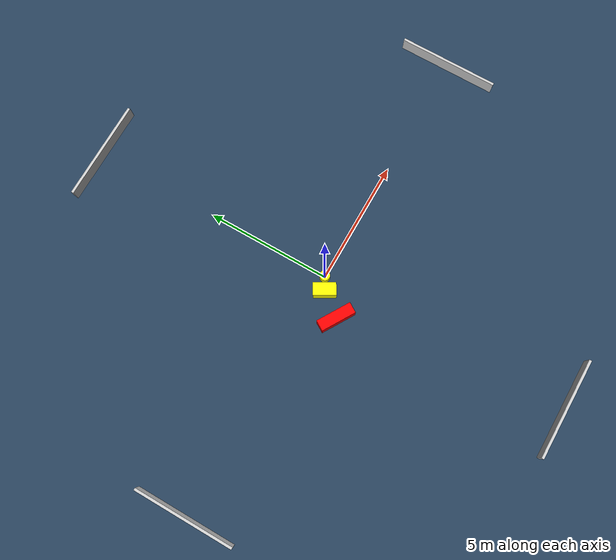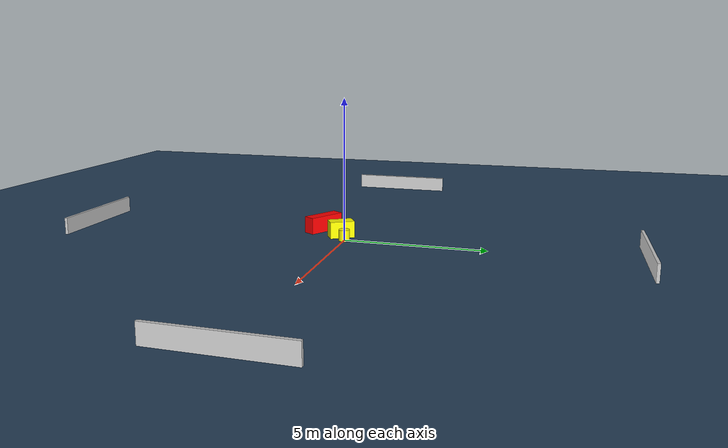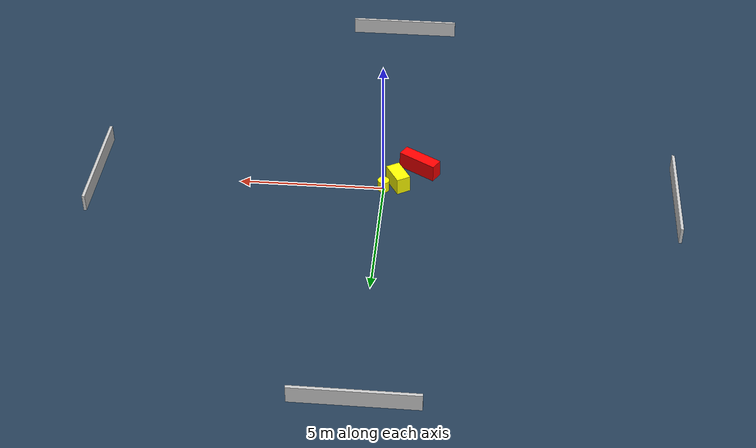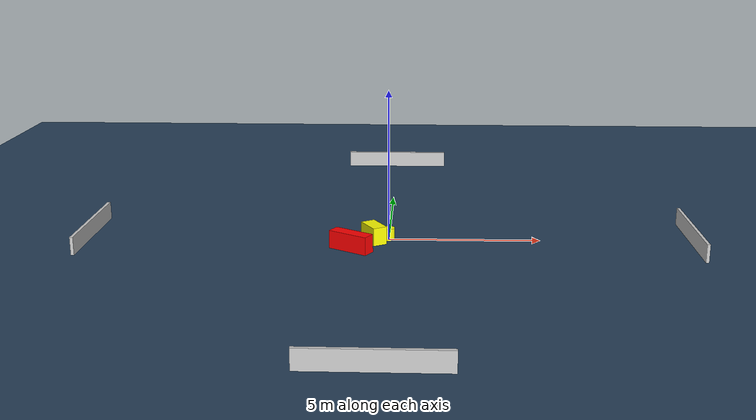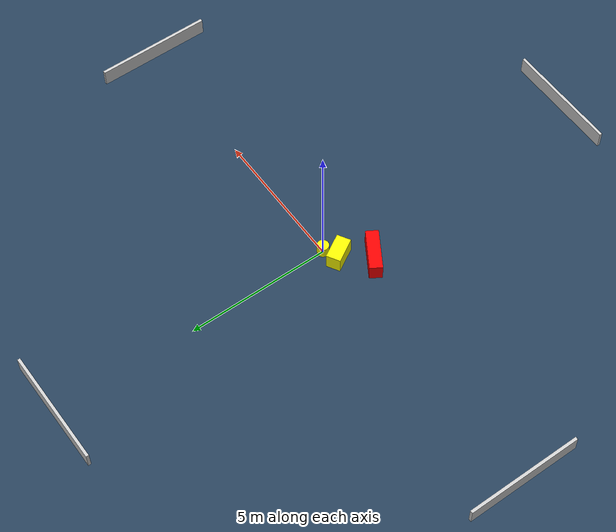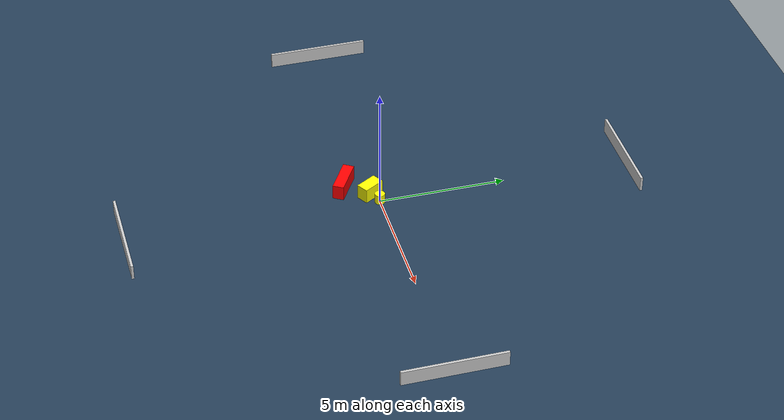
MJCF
<?xml version="1.0" ?>
<mujoco model="generated_environment">
  <option timestep="0.01" integrator="RK4" cone="elliptic"/>
  <default>
    <geom density="1"/>
  </default>
  <asset>
    <texture builtin="gradient" height="3072" name="skybox" rgb1="0.3 0.5 0.7" rgb2="0 0 0" type="skybox" width="512"/>
    <texture builtin="checker" height="300" name="groundplane" rgb1="0.2 0.3 0.4" rgb2="0.1 0.2 0.3" type="2d" width="300"/>
    <material name="groundplane" reflectance="0.2" texrepeat="5 5" texture="groundplane"/>
  </asset>
  <worldbody>
    <light dir="0 0 -1" directional="true" pos="0 0 1.5"/>
    <geom condim="3" friction="0.5 0.005 0.001" material="groundplane" name="floor" pos="0 0 0" size="0 0 0.05" type="plane"/>
    <body name="walls">
      <geom name="wall_1" condim="4" pos="-10.0 0.0 0.3" rgba="0.800000011920929 0.800000011920929 0.800000011920929 1.0" size="0.05 2.0 0.3" type="box"/>
      <geom name="wall_2" condim="4" pos="10.0 0.0 0.3" rgba="0.800000011920929 0.800000011920929 0.800000011920929 1.0" size="0.05 2.0 0.3" type="box"/>
      <geom name="wall_3" condim="4" pos="0.0 -10.0 0.3" rgba="0.800000011920929 0.800000011920929 0.800000011920929 1.0" size="2.0 0.05 0.3" type="box"/>
      <geom name="wall_4" condim="4" pos="0.0 10.0 0.3" rgba="0.800000011920929 0.800000011920929 0.800000011920929 1.0" size="2.0 0.05 0.3" type="box"/>
    </body>
    <body name="robot">
      <joint name="joint_x" type="slide" pos="0 0 0" axis="1 0 0"/>
      <joint name="joint_y" type="slide" pos="0 0 0" axis="0 1 0"/>
      <geom name="robot" type="cylinder" pos="0.0 0.0 0.2" size="0.2 0.2 0.0" mass="5.0" friction="1.0 0.005 0.0001" condim="4" rgba="1.0 1.0 0.0 1.0"/>
    </body>
    <body name="obstacle_1_movable">
      <geom name="obstacle_1_movable" condim="4" pos="-0.4832560535720376 -0.26218664955870796 0.3" euler="0 0 300.39780540632023" friction="0.0 0.005 0.001" rgba="1.0 1.0 0.0 1.0" size="0.44054200037710944 0.2448620053978579 0.3" type="box" mass="0.1"/>
      <joint type="free"/>
    </body>
    <body name="obstacle_2_static">
      <geom name="obstacle_2_static" condim="4" pos="-1.182208407957338 -1.1465992158046188 0.3" euler="0 0 328.62483375370607" friction="0.0 0.005 0.001" rgba="1.0 0.0 0.0 1.0" size="0.7087799415434275 0.2186009576650507 0.3" type="box"/>
    </body>
  </worldbody>
  <actuator>
    <motor name="actuator_x" joint="joint_x" gear="1" ctrlrange="-1 1"/>
    <motor name="actuator_y" joint="joint_y" gear="1" ctrlrange="-1 1"/>
  </actuator>
</mujoco>
